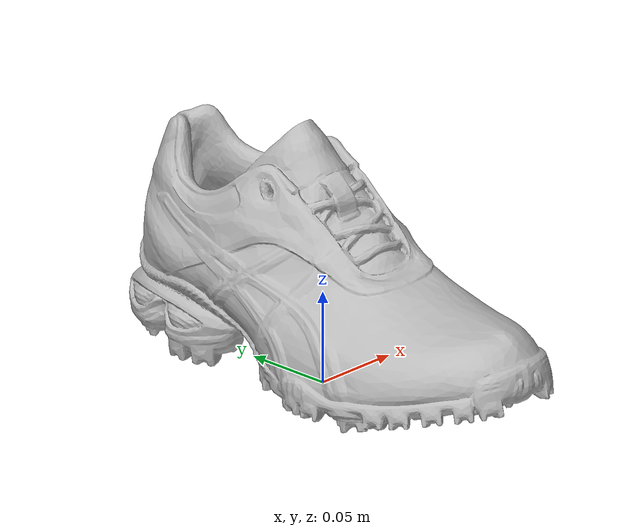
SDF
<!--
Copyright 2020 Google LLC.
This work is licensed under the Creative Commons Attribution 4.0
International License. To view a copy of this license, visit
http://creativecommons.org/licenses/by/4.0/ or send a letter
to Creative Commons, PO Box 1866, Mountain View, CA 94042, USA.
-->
<?xml version="1.0" ?>
<sdf version="1.6">
  <model name="ASICS_GELLinksmaster_WhiteSilverCarolina_Blue">
    <link name="link_0">
      <visual name="visual">
        <geometry>
          <mesh>
            <uri>meshes/model.obj</uri>
          </mesh>
        </geometry>
      </visual>
      <collision name="collision_0">
        <geometry>
          <mesh>
            <uri>meshes/model.obj</uri>
          </mesh>
        </geometry>
      </collision>
    </link>
  </model>
</sdf>
